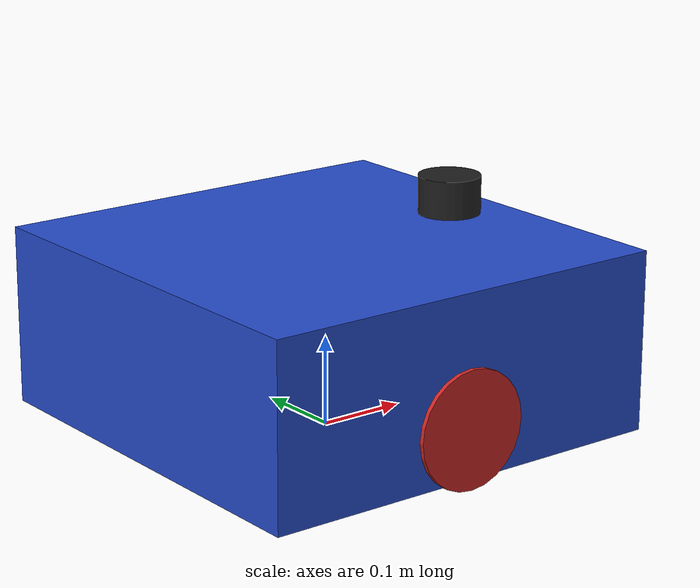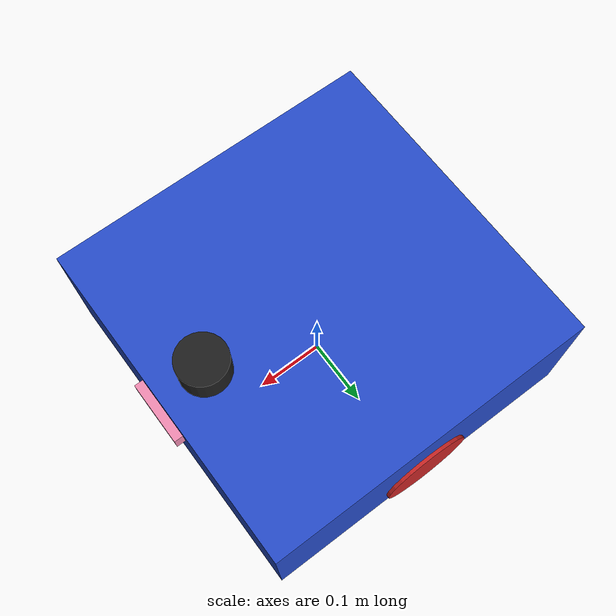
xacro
<?xml version="1.0"?>
<robot name="food_del_robot" xmlns:xacro="http://www.ros.org/wiki/xacro">

    <!-- Xacro parameters -->
    <xacro:property name="base_length" value="0.48"/>
    <xacro:property name="base_height" value="0.2"/>
    <xacro:property name="base_width" value="0.48"/>
    <xacro:property name="base_height_from_ground" value="0.01"/>
    <xacro:property name="base_to_wheel_center" value="0.0555"/>
    <xacro:property name="distance_between_two_wheels" value="0.45"/>
    <xacro:property name="wheel_radius" value="0.065"/>
    <xacro:property name="wheel_length" value="0.04"/>
    <xacro:property name="rotate_90" value="1.57"/>
    <xacro:property name ="lidar_length" value = "0.043"/>
    <xacro:property name ="lidar_radius" value = "0.035"/>
    <xacro:property name ="lidar_shift_from_center" value = "0.172"/>
    <xacro:property name="imu_length" value="0.031"/>
    <xacro:property name="imu_height" value="0.016"/>
    <xacro:property name="imu_width" value="0.025"/>
    <xacro:property name="imu_height_from_ground" value="0.110"/>
    <xacro:property name="camera_length" value="0.025"/>
    <xacro:property name="camera_height" value="0.025"/>
    <xacro:property name="camera_width" value="0.09"/>
    <xacro:property name="camera_height_from_ground" value="0.150"/>

    <!-- Wheel macro -->
    <xacro:macro name="wheel_link" params="prefix">
        <link name="${prefix}_wheel_link">
            <visual>
                <geometry>
                    <cylinder radius="${wheel_radius}" length="${wheel_length}"/>
                </geometry>
                <!-- Rotate cylinder to roll correctly along Y axis -->
                <origin xyz="0.0 0.0 0.0" rpy="${rotate_90} 0.0 0.0"/>
                <material name="red"/>
            </visual>
            <collision>
                <geometry>
                    <sphere radius="${wheel_radius}"/>
                </geometry>
                <origin xyz="0.0 0.0 0.0" rpy="0.0 0.0 0.0"/>
            </collision>
            <xacro:cylinder_inertia
                m="1.0"
                r="${wheel_radius}"
                l="${wheel_length}"
                o_xyz="0.0 0.0 0.0"
                o_rpy="0.0 ${rotate_90} 0.0"/>
        </link>
    </xacro:macro>

    <!-- Instantiate wheels -->
    <xacro:wheel_link prefix="right"/>
    <xacro:wheel_link prefix="left"/>

    <!-- Base footprint -->
    <link name="base_footprint"/>

    <!-- Base links -->
    <link name="base_link">
        <visual>
            <geometry>
                <box size="${base_length} ${base_width} ${base_height}"/>
            </geometry>
            <origin xyz="0.0 0.0 ${base_height / 2.0}" rpy="0.0 0.0 0.0"/>
            <material name="blue"/>
        </visual>
        <collision>
            <geometry>
                <box size="${base_length} ${base_width} ${base_height}"/>
            </geometry>
            <origin xyz="0.0 0.0 ${base_height / 2.0}" rpy="0.0 0.0 0.0"/>
        </collision>
        <xacro:box_inertia
            m="5.0"
            x="${base_length}"
            y="${base_width}"
            z="${base_height}"
            o_xyz="0.0 0.0 ${base_height / 2.0}"
            o_rpy="0.0 0.0 0.0"/>
    </link>

    <!-- Base scan link -->
    <link name="laser_link">
        <visual>
            <geometry>
                <cylinder radius="${lidar_radius}" length="${lidar_length}"/>
            </geometry>
            <origin xyz="0.0 0.0 0.0" rpy="0.0 0.0 0.0"/>
            <material name="black"/>
        </visual>
        <collision>
            <geometry>
                <cylinder radius="${lidar_radius}" length="${lidar_length}"/>
            </geometry>
            <origin xyz="0.0 0.0 0.0" rpy="0.0 0.0 0.0"/>
        </collision>
        <xacro:cylinder_inertia
            m="0.2"
            r="${lidar_radius}"
            l="${lidar_length}"
            o_xyz="0.0 0.0 0.0"
            o_rpy="0.0 0.0 0.0"/>
    </link>

    <!-- IMU link -->
    <link name="imu_link">
        <visual>
            <geometry>
                <box size="${imu_length} ${imu_width} ${imu_height}"/>
            </geometry>
            <origin xyz="0.0 0.0 ${imu_height / 2.0}" rpy="0.0 0.0 0.0"/>
            <material name="blue"/>
        </visual>
        <collision>
            <geometry>
                <box size="${imu_length} ${imu_width} ${imu_height}"/>
            </geometry>
            <origin xyz="0.0 0.0 ${imu_height / 2.0}" rpy="0.0 0.0 0.0"/>
        </collision>
        <xacro:box_inertia
            m="5.0"
            x="${imu_length}"
            y="${imu_width}"
            z="${imu_height}"
            o_xyz="0.0 0.0 ${imu_height / 2.0}"
            o_rpy="0.0 0.0 0.0"/>
    </link>

    <!-- Camera link -->
    <link name="camera_link">
        <visual>
            <geometry>
                <box size="${camera_length} ${camera_width} ${camera_height}"/>
            </geometry>
            <origin xyz="0.0 0.0 ${camera_height / 2.0}" rpy="0.0 0.0 0.0"/>
            <material name="pink"/>
        </visual>
        <collision>
            <geometry>
                <box size="${camera_length} ${camera_width} ${camera_height}"/>
            </geometry>
            <origin xyz="0.0 0.0 ${camera_height / 2.0}" rpy="0.0 0.0 0.0"/>
        </collision>
        <xacro:box_inertia
            m="0.5"
            x="${camera_length}"
            y="${camera_width}"
            z="${camera_height}"
            o_xyz="0.0 0.0 ${camera_height / 2.0}"
            o_rpy="0.0 0.0 0.0"/>
    </link>

    <!-- base footprint - base link joint -->
    <joint name="base_footprint_base_link_joint" type="fixed">
        <origin xyz="0.0 0.0 ${base_height_from_ground}" rpy="0.0 0.0 0.0"/>
        <parent link="base_footprint"/>
        <child link="base_link"/>
    </joint>

    <!-- base link - right wheel link joint -->
    <joint name="base_left_wheel_joint" type="continuous">
        <origin xyz="0.0 ${distance_between_two_wheels/2} ${base_to_wheel_center}" rpy="0.0 0.0 0.0"/>
        <parent link="base_link"/>
        <child link="left_wheel_link"/>
        <axis xyz="0.0 1.0 0.0"/>
    </joint>

    <!-- base link - left wheel link joint -->
    <joint name="base_right_wheel_joint" type="continuous">
        <origin xyz="0.0 ${-distance_between_two_wheels/2} ${base_to_wheel_center}" rpy="0.0 0.0 0.0"/>
        <parent link="base_link"/>
        <child link="right_wheel_link"/>
        <axis xyz="0.0 1.0 0.0"/>
    </joint>

    <!-- base link - base scan link joint -->
    <joint name="laser_base_link_joint" type="fixed">
        <origin xyz="${lidar_shift_from_center} 0.0 ${base_height + (lidar_length/2)}" rpy="0.0 0.0 0.0"/>
        <parent link="base_link"/>
        <child link="laser_link"/>
    </joint>

    <!-- base link - imu link joint -->
    <joint name="base_imu_joint" type="fixed">
        <origin xyz="0.0 0.0 ${imu_height_from_ground}" rpy="0.0 0.0 0.0"/>
        <parent link="base_link"/>
        <child link="imu_link"/>
    </joint>

    <!-- base link - camera link joint -->
    <joint name="base_camera_joint" type="fixed">
        <origin xyz="${base_length/2.0} 0.0 ${camera_height_from_ground}" rpy="0.0 0.0 0.0"/>
        <parent link="base_link"/>
        <child link="camera_link"/>
    </joint>

</robot>
